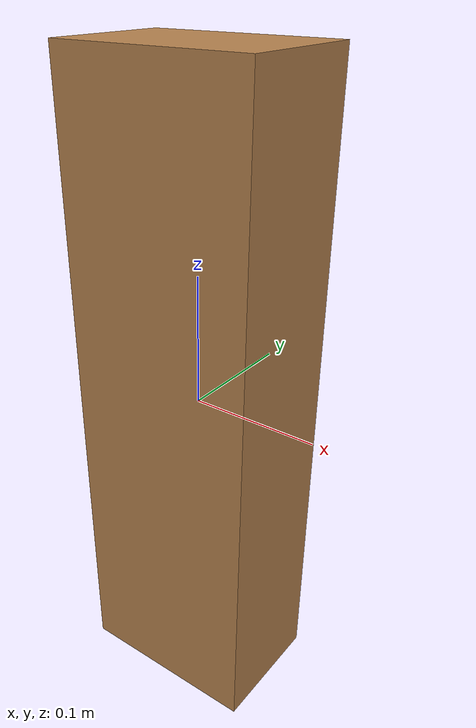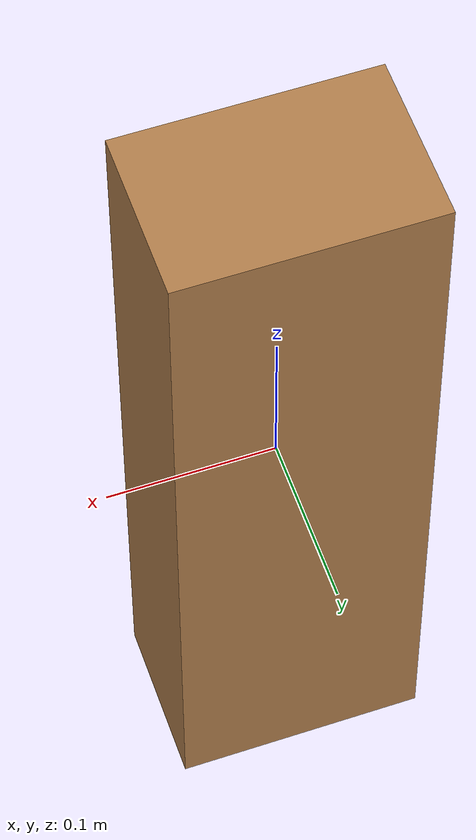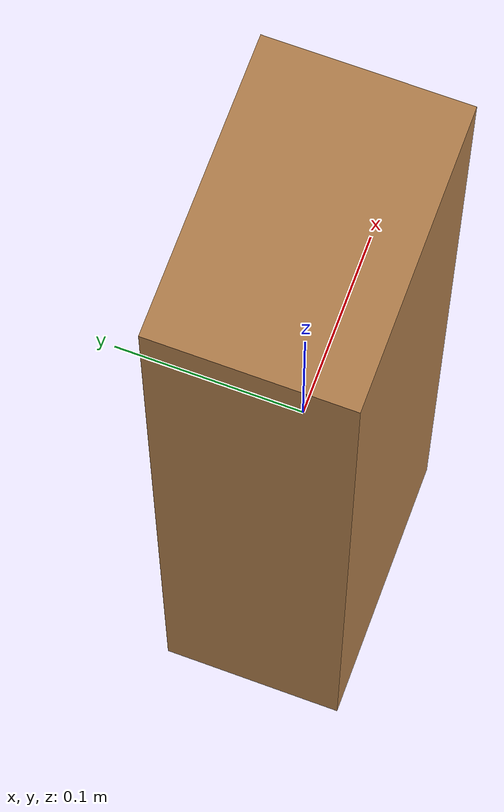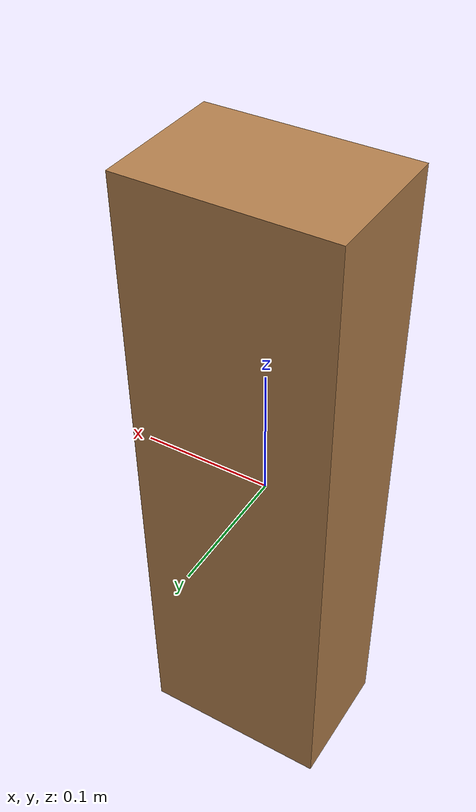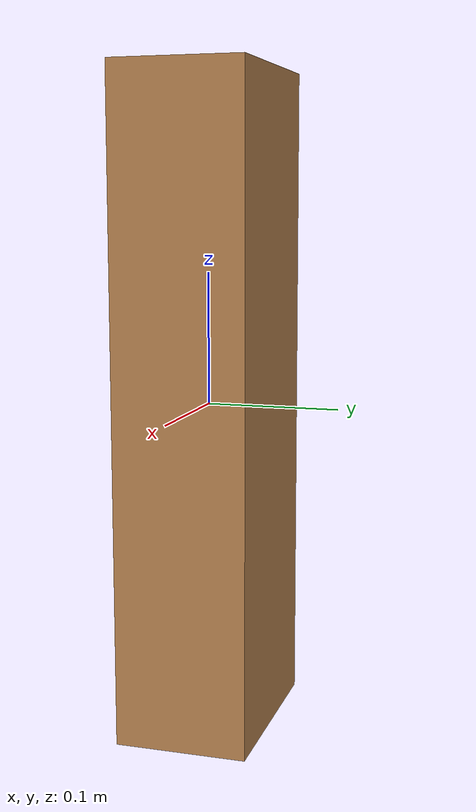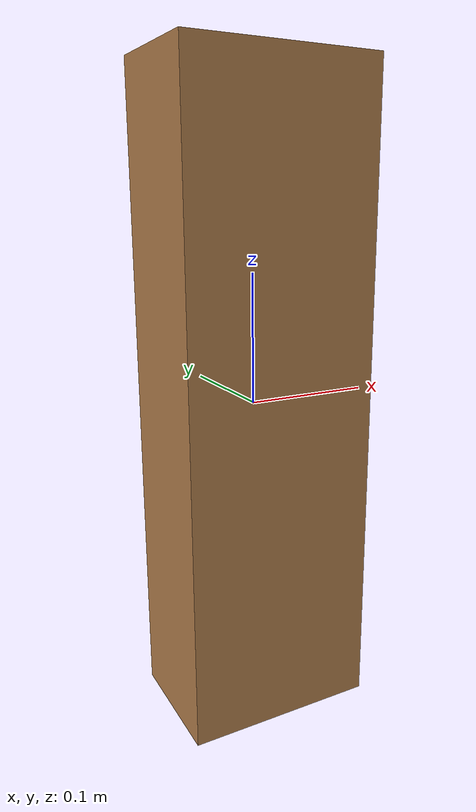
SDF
<?xml version='1.0'?>
<sdf version='1.6'>
  <model name='wall_0_1'>
    <link name='Wall_0'>
      <collision name='Wall_0_Collision'>
        <geometry>
          <box>
            <size>0.15 0.1 0.5</size>
          </box>
        </geometry>
      </collision>
      <visual name='Wall_0_Visual'>
        <geometry>
          <box>
            <size>0.15 0.1 0.5</size>
          </box>
        </geometry>
        <material>
          <script>
            <uri>file://media/materials/scripts/gazebo.material</uri>
            <name>Gazebo/Wood</name>
          </script>
          <ambient>1 1 1 1</ambient>
        </material>
      </visual>
    </link>
    <static>1</static>
  </model>
</sdf>
